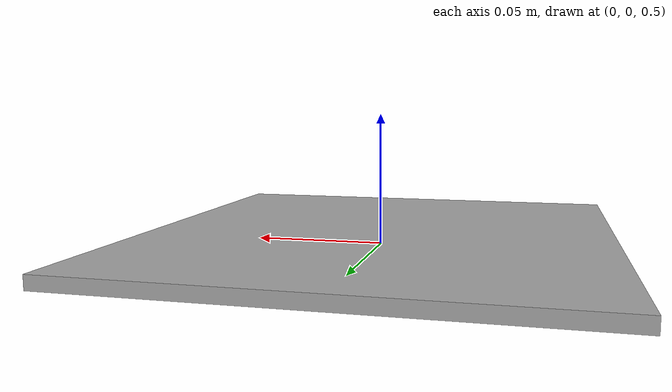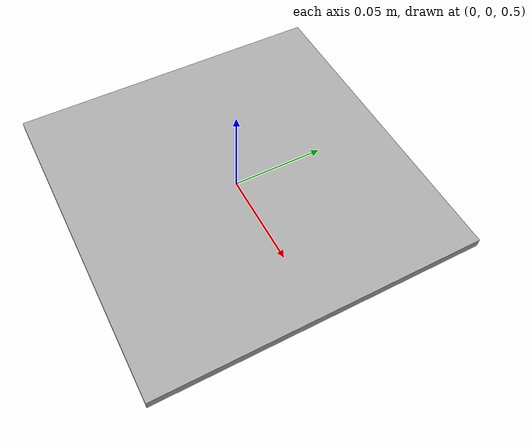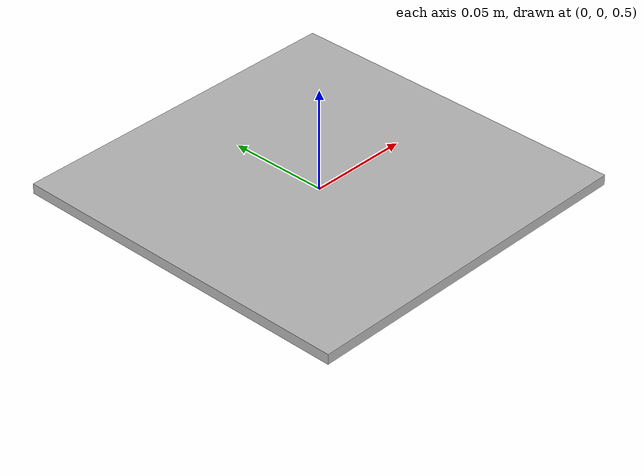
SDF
<?xml version="1.0" ?>
<sdf version="1.5">
  <model name="ArUco 4X4 1000 No.15">
    <pose>0 0 0.5 0 0 0</pose>
    <static>true</static>
    <link name="link">
      <inertial>
        <mass>0.1</mass>
        <inertia>
          <ixx>1</ixx>
          <ixy>0</ixy>
          <ixz>0</ixz>
          <iyy>1</iyy>
          <iyz>0</iyz>
          <izz>1</izz>
        </inertia>
      </inertial>
      <collision name="collision">
        <pose>0 0 0.0025 0 0 0</pose>
        <geometry>
          <box>
            <size>0.175 0.175 0.005</size>
          </box>
        </geometry>
        <surface>
          <contact>
            <ode>
              <max_vel>0.1</max_vel>
              <min_depth>0.001</min_depth>
            </ode>
          </contact>
        </surface>
      </collision>
      <visual name="visual">
        <geometry>
          <mesh>
            <uri>model://ArUco_4X4_1000_15/collada/marker.dae</uri>
          </mesh>
        </geometry>
      </visual>
    </link>
  </model>
</sdf>
